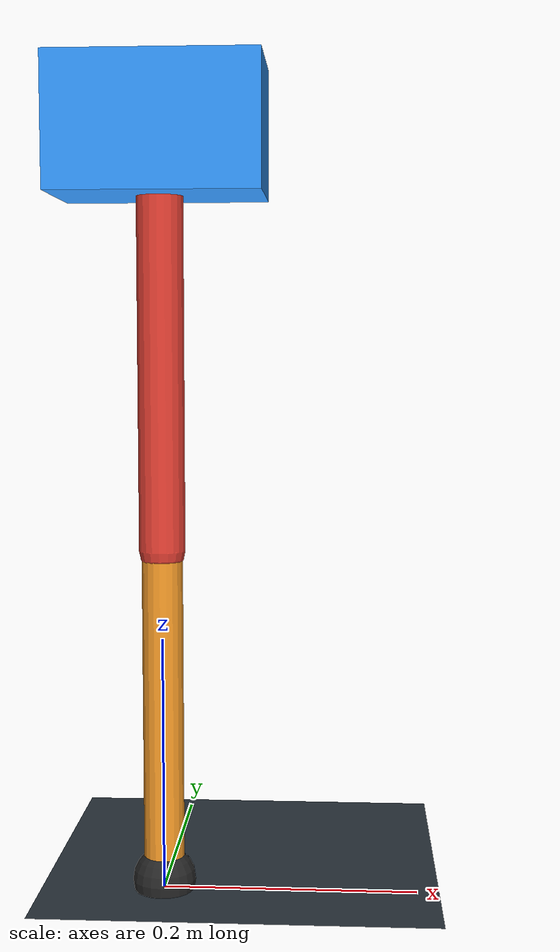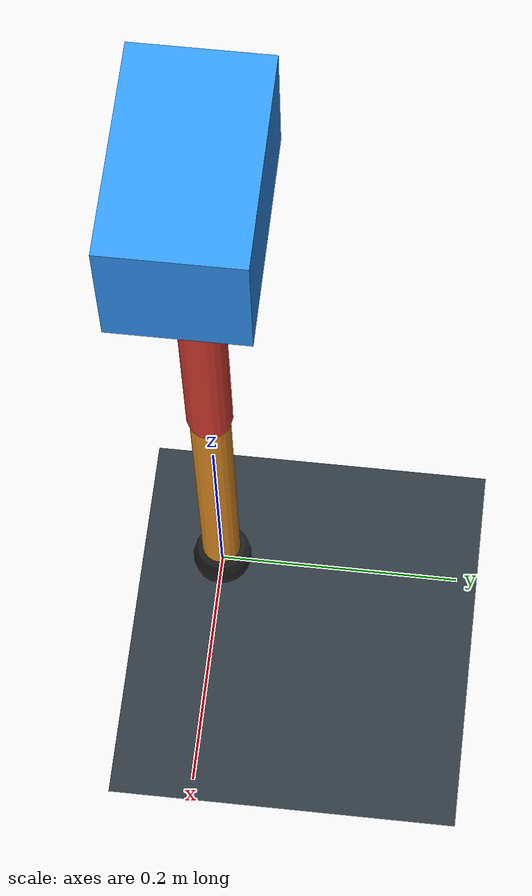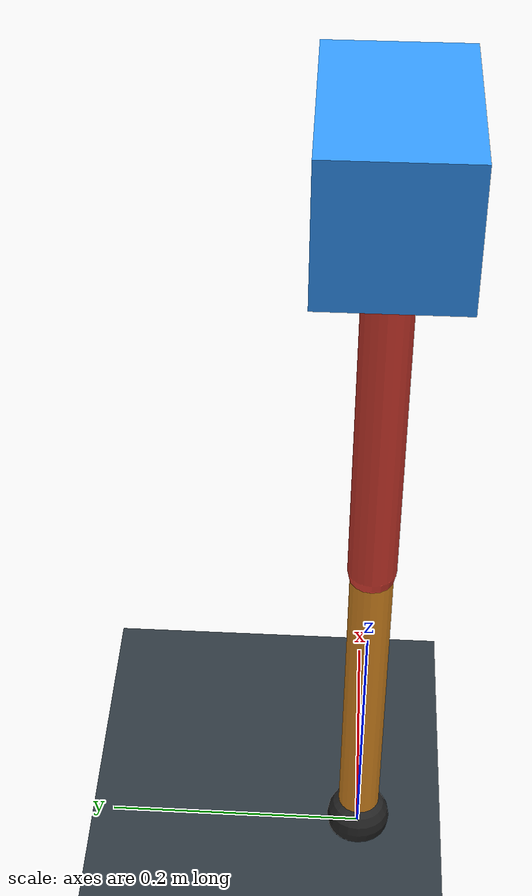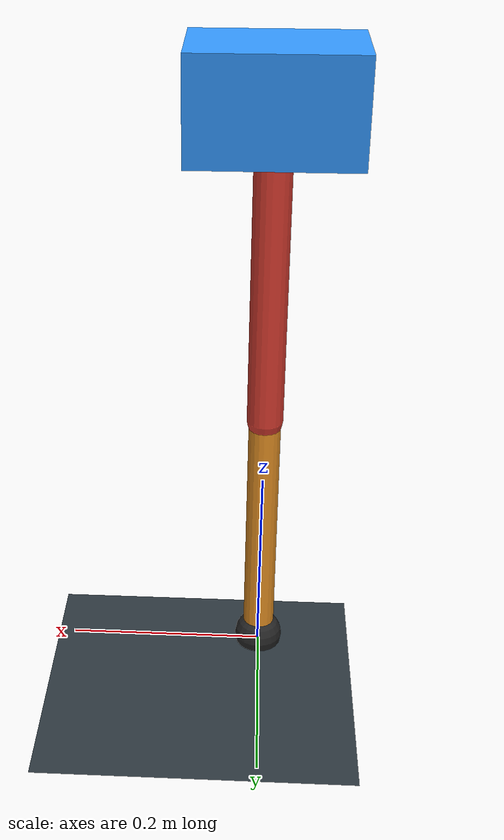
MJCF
<mujoco model="single_axis_two_bar">
  <compiler angle="radian" inertiafromgeom="true"/>
  <option timestep="0.001" integrator="implicitfast" gravity="0 0 -9.81"/>
  <default>
    <joint damping="0.08"/>
    <geom friction="1.2 0.01 0.0001" condim="3"/>
  </default>
  <worldbody>
    <geom name="floor" type="plane" size="5 5 0.1" rgba="0.18 0.22 0.25 1"/>
    <body name="carriage" pos="0 0 0.5904885736139428">
      <joint name="pole_slide" type="slide" axis="0 0 1"/>
      <geom name="payload" type="box" size="0.08 0.05 0.05" mass="3.256740577570735" rgba="0.2 0.6 1 1"/>
      <body name="thigh" pos="0 0 0">
        <joint name="hip" type="hinge" axis="0 1 0"/>
        <geom name="thigh_link" type="capsule" fromto="0 0 0 0 0 -0.32058772698413884" size="0.018" mass="0.22842299166925864" rgba="0.9 0.25 0.2 1"/>
        <body name="shank" pos="0 0 -0.32058772698413884">
          <joint name="knee" type="hinge" axis="0 1 0"/>
          <geom name="shank_link" type="capsule" fromto="0 0 0 0 0 -0.2623901839580702" size="0.016" mass="0.18695647325050235" rgba="0.95 0.6 0.15 1"/>
          <geom name="foot" type="sphere" pos="0 0 -0.2623901839580702" size="0.025" mass="0.03" rgba="0.15 0.15 0.15 1"/>
          <site name="toe" pos="0 0 -0.2623901839580702" size="0.008"/>
        </body>
      </body>
    </body>
  </worldbody>
  <actuator>
    <motor name="hip_motor" joint="hip" ctrlrange="-25.176165801256115 25.176165801256115"/>
    <motor name="knee_motor" joint="knee" ctrlrange="-84.96978374625611 84.96978374625611"/>
  </actuator>
</mujoco>
